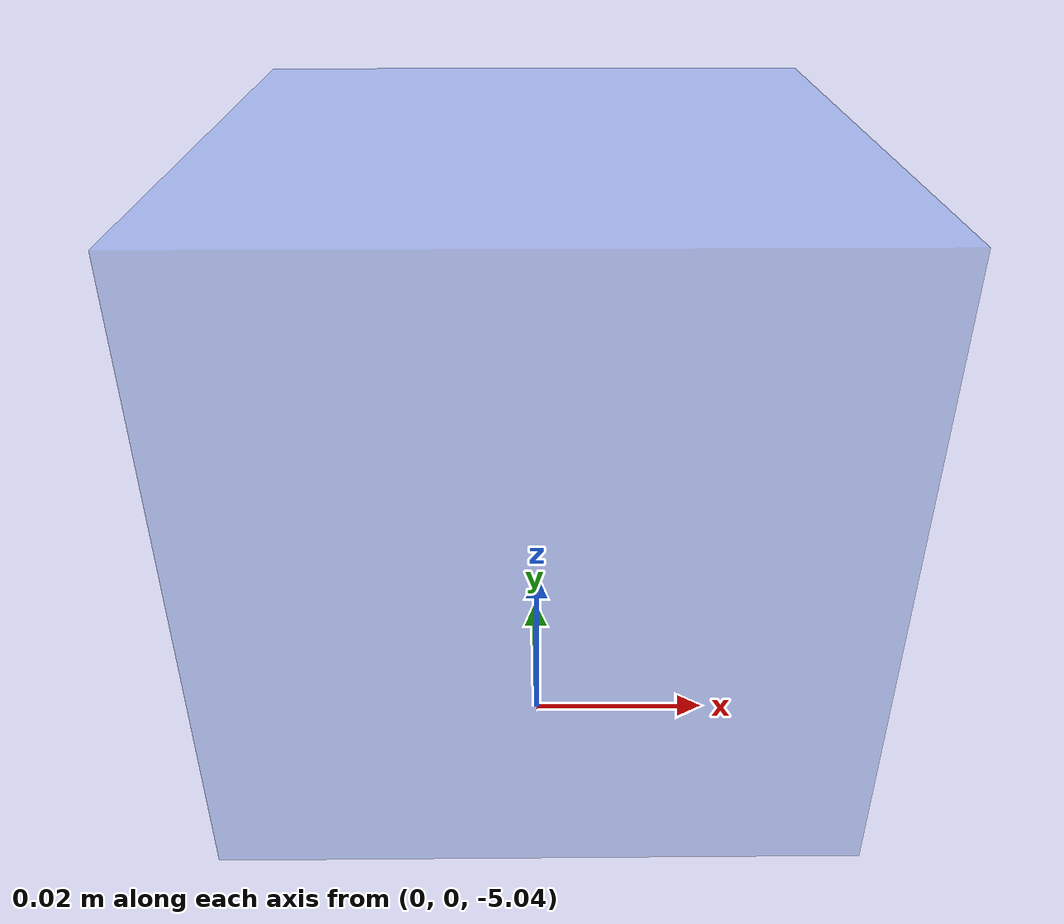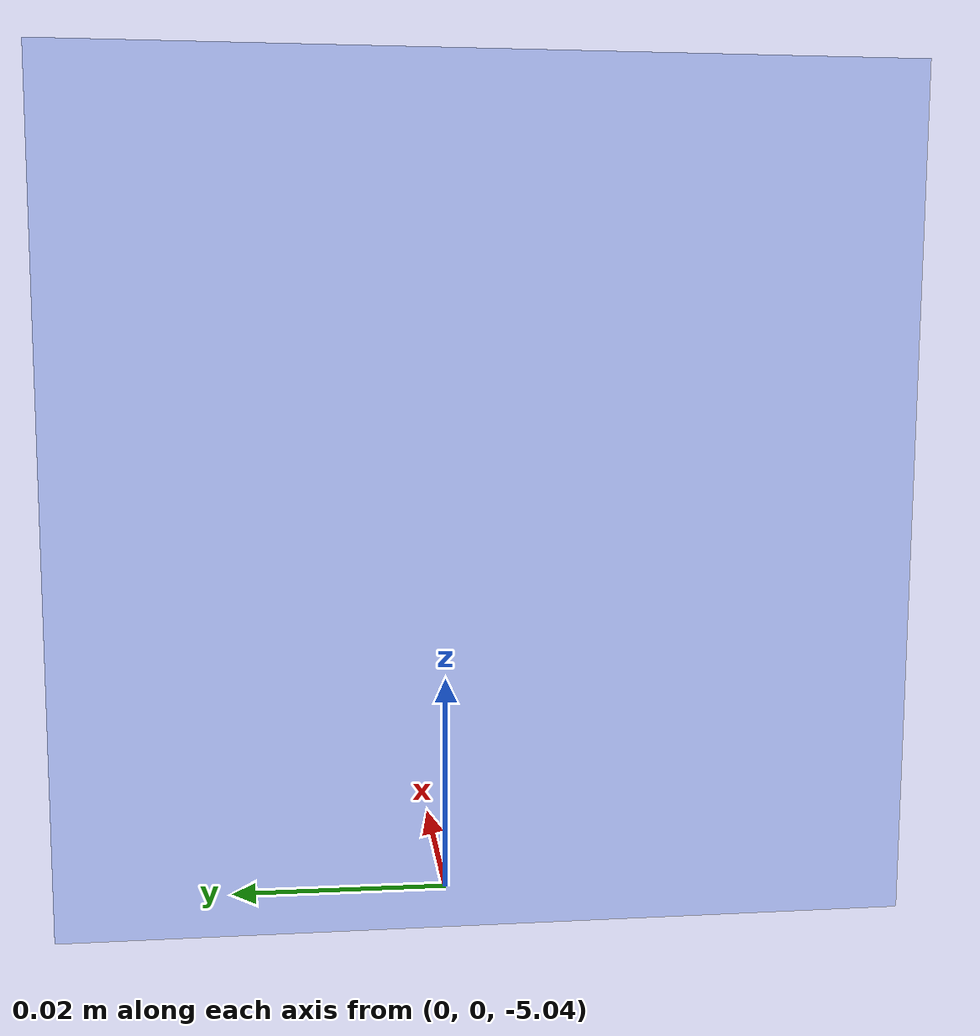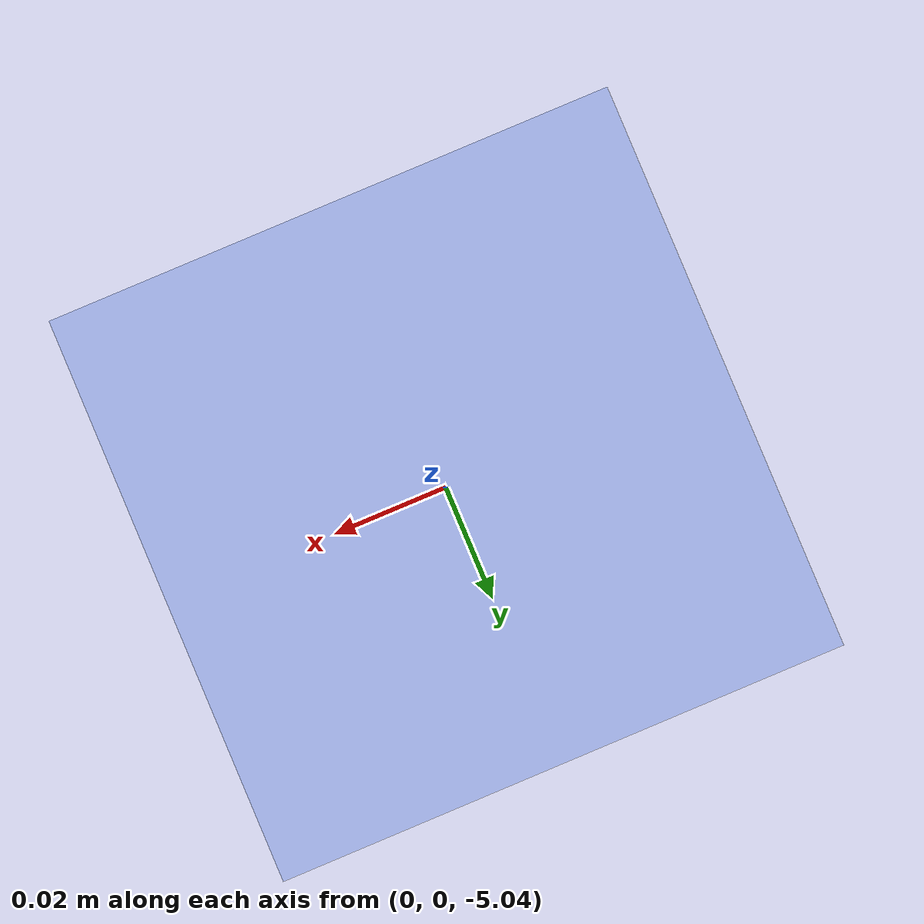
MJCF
<mujoco model="region">
    <default>
        <default class="region_box">
            <geom type="box" size="0.03 0.03 0.03" rgba="0.2 0.4 0.9 0.3" contype="0" conaffinity="0"/>
        </default>
    </default>

    <worldbody>
        <body name="region_template" pos="0 0 -5" mocap="true">
            <geom name="region_geom" class="region_box"/>
        </body>
    </worldbody>
</mujoco>
